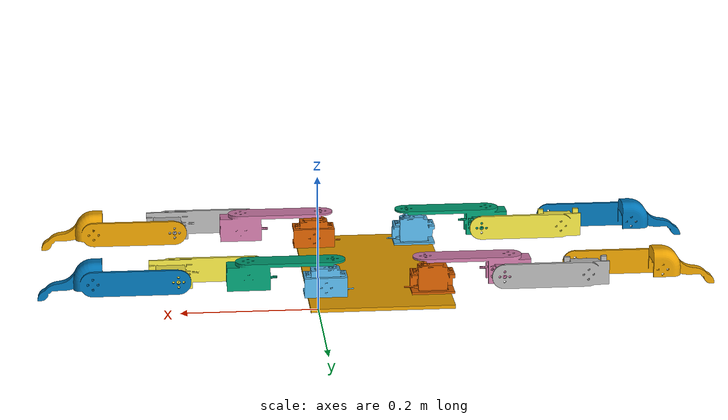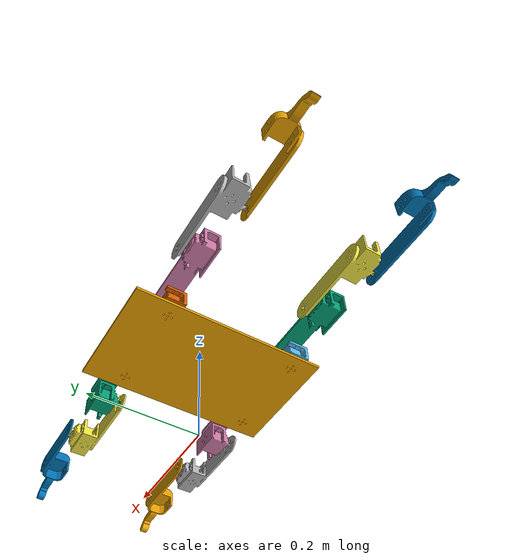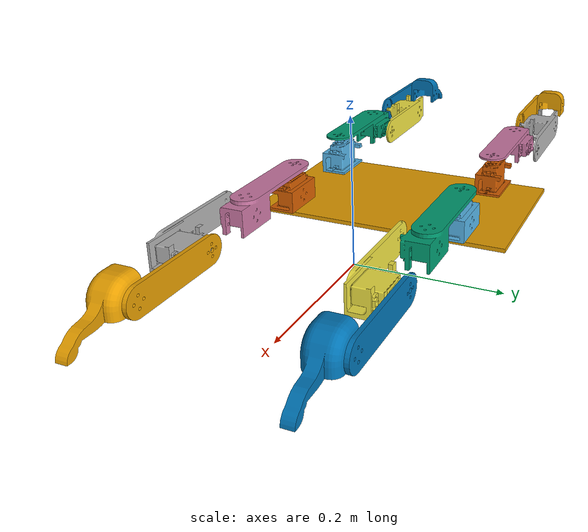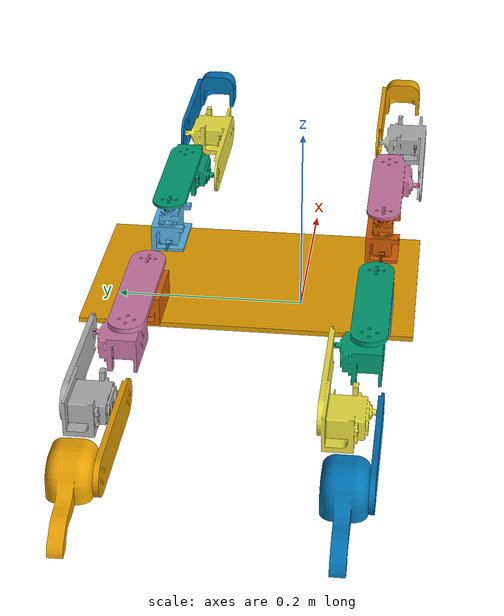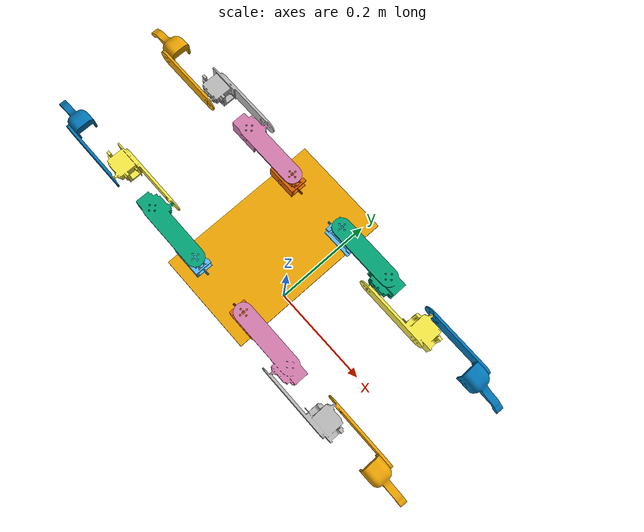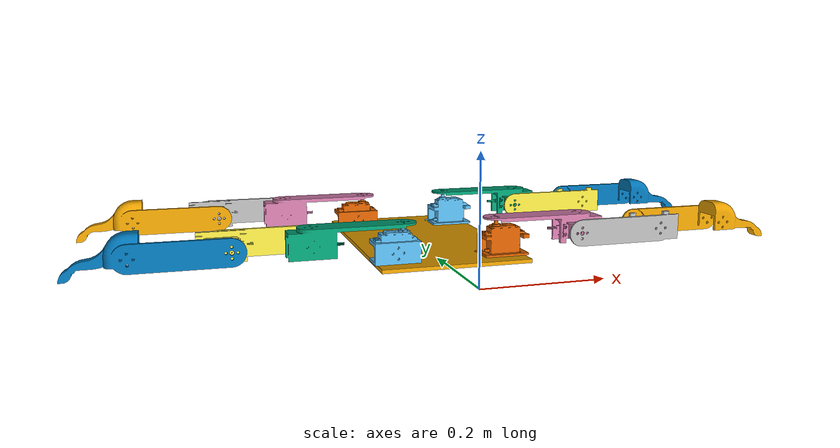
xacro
<?xml version="1.0"?>
<robot name="bob" xmlns:xacro="http://www.ros.org/wiki/xacro">
  <!-- CAD-derived axes, limits and masses are preliminary; validate against actual hardware. -->
  <link name="base_link"><visual><geometry><mesh filename="package://bob_description/meshes/base_link.stl"/></geometry></visual><inertial><mass value="1.0"/><inertia ixx="0.01" iyy="0.01" izz="0.01" ixy="0" ixz="0" iyz="0"/></inertial></link>
  <xacro:macro name="bob_leg" params="prefix a0 a1 a2 a3 d1 d2">
    <link name="${prefix}_mount"><visual><geometry><mesh filename="package://bob_description/meshes/${prefix}_part0.stl"/></geometry></visual><inertial><mass value="0.1"/><inertia ixx="0.001" iyy="0.001" izz="0.001" ixy="0" ixz="0" iyz="0"/></inertial></link>
    <joint name="${prefix}_mount_fixed" type="fixed"><parent link="base_link"/><child link="${prefix}_mount"/><origin xyz="0 0 0" rpy="0 0 0"/></joint>
    <link name="${prefix}_joint1_link"><visual><origin xyz="${a1}" rpy="0 0 0"/><geometry><mesh filename="package://bob_description/meshes/${prefix}_part1.stl"/></geometry></visual><inertial><mass value="0.2"/><inertia ixx="0.001" iyy="0.001" izz="0.001" ixy="0" ixz="0" iyz="0"/></inertial></link>
    <joint name="joint1_${prefix}" type="revolute"><parent link="${prefix}_mount"/><child link="${prefix}_joint1_link"/><origin xyz="${a0}" rpy="0 0 0"/><axis xyz="0 0 1"/><limit lower="-1.570796" upper="1.570796" effort="10" velocity="2.618"/></joint>
    <link name="${prefix}_joint2_link"><visual><origin xyz="${a2}" rpy="0 0 0"/><geometry><mesh filename="package://bob_description/meshes/${prefix}_part2.stl"/></geometry></visual><inertial><mass value="0.2"/><inertia ixx="0.001" iyy="0.001" izz="0.001" ixy="0" ixz="0" iyz="0"/></inertial></link>
    <joint name="joint3_${prefix}" type="revolute"><parent link="${prefix}_joint1_link"/><child link="${prefix}_joint2_link"/><origin xyz="${d1}" rpy="0 0 0"/><axis xyz="0 1 0"/><limit lower="-1.570796" upper="1.570796" effort="10" velocity="2.618"/></joint>
    <link name="${prefix}_joint3_link"><visual><origin xyz="${a3}" rpy="0 0 0"/><geometry><mesh filename="package://bob_description/meshes/${prefix}_part3.stl"/></geometry></visual><inertial><mass value="0.2"/><inertia ixx="0.001" iyy="0.001" izz="0.001" ixy="0" ixz="0" iyz="0"/></inertial></link>
    <joint name="joint4_${prefix}" type="revolute"><parent link="${prefix}_joint2_link"/><child link="${prefix}_joint3_link"/><origin xyz="${d2}" rpy="0 0 0"/><axis xyz="0 1 0"/><limit lower="-1.570796" upper="1.570796" effort="10" velocity="2.618"/></joint>
  </xacro:macro>
  <xacro:bob_leg prefix="leg0" a0="-0.137775 -0.086000 0.111950" a1="0.137775 0.086000 -0.111950" a2="0.244985 0.060036 -0.101200" a3="0.352195 0.093736 -0.101186" d1="-0.107210 0.025964 -0.010750" d2="-0.107210 -0.033700 -0.000014"/>
  <xacro:bob_leg prefix="leg1" a0="-0.139700 0.140000 0.111950" a1="0.139700 -0.140000 -0.111950" a2="0.246910 -0.165964 -0.101200" a3="0.354120 -0.132264 -0.101186" d1="-0.107210 0.025964 -0.010750" d2="-0.107210 -0.033700 -0.000014"/>
  <xacro:bob_leg prefix="leg2" a0="-0.010300 0.140000 0.111950" a1="0.010300 -0.140000 -0.111950" a2="-0.096910 -0.114036 -0.101200" a3="-0.204120 -0.147736 -0.101186" d1="0.107210 -0.025964 -0.010750" d2="0.107210 0.033700 -0.000014"/>
  <xacro:bob_leg prefix="leg3" a0="-0.010300 -0.086000 0.111950" a1="0.010300 0.086000 -0.111950" a2="-0.096910 0.111964 -0.101200" a3="-0.204120 0.078264 -0.101186" d1="0.107210 -0.025964 -0.010750" d2="0.107210 0.033700 -0.000014"/>
</robot>
